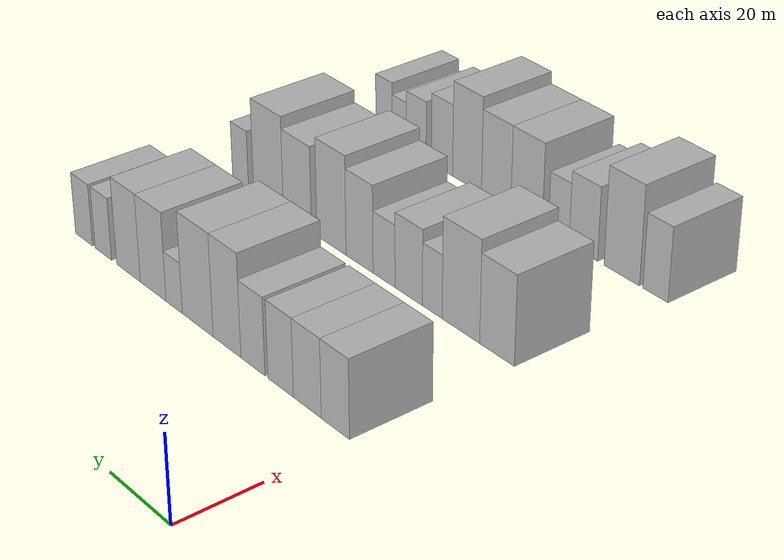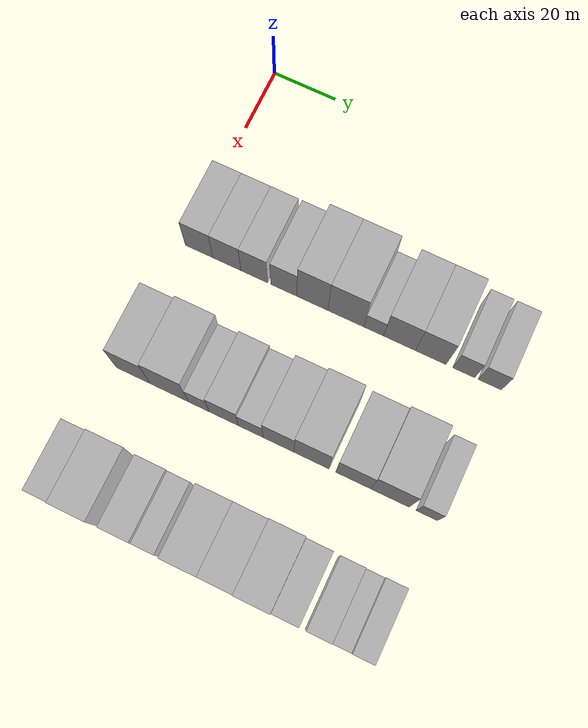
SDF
<sdf version="1.6">
 <world name="default">
  <model name="building_42">
   <static>1</static>
   <pose>50.0000 5.1504 0 0.000000 0.000000 0.000000</pose>
   <link name="link">
    <pose>0 0 9.00 0 0 0</pose>
    <collision name="collision"><geometry><box><size>20.0000 8.7349 18.0000</size></box></geometry></collision>
    <visual name="visual">
     <cast_shadows>0</cast_shadows>
     <geometry><box><size>20.0000 8.7349 18.0000</size></box></geometry>
     <material>
      <script>
       <uri>model://HANNAS_wall/materials/scripts</uri>
       <uri>model://HANNAS_wall/materials/textures</uri>
       <name>vrc/HANNAS_wall</name>
      </script>
     </material>
    </visual>
   </link>
  </model>
  <model name="building_43">
   <static>1</static>
   <pose>50.0000 13.9626 0 0.000000 0.000000 0.000000</pose>
   <link name="link">
    <pose>0 0 9.00 0 0 0</pose>
    <collision name="collision"><geometry><box><size>20.0000 8.8895 18.0000</size></box></geometry></collision>
    <visual name="visual">
     <cast_shadows>0</cast_shadows>
     <geometry><box><size>20.0000 8.8895 18.0000</size></box></geometry>
     <material>
      <script>
       <uri>model://HANNAS_wall/materials/scripts</uri>
       <uri>model://HANNAS_wall/materials/textures</uri>
       <name>vrc/HANNAS_wall</name>
      </script>
     </material>
    </visual>
   </link>
  </model>
  <model name="building_44">
   <static>1</static>
   <pose>50.0000 22.5887 0 0.000000 0.000000 0.000000</pose>
   <link name="link">
    <pose>0 0 9.00 0 0 0</pose>
    <collision name="collision"><geometry><box><size>20.0000 8.3627 18.0000</size></box></geometry></collision>
    <visual name="visual">
     <cast_shadows>0</cast_shadows>
     <geometry><box><size>20.0000 8.3627 18.0000</size></box></geometry>
     <material>
      <script>
       <uri>model://HANNAS_wall/materials/scripts</uri>
       <uri>model://HANNAS_wall/materials/textures</uri>
       <name>vrc/HANNAS_wall</name>
      </script>
     </material>
    </visual>
   </link>
  </model>
  <model name="building_45">
   <static>1</static>
   <pose>50.0000 31.8233 0 0.000000 0.000000 0.000000</pose>
   <link name="link">
    <pose>0 0 9.00 0 0 0</pose>
    <collision name="collision"><geometry><box><size>20.0000 8.1066 18.0000</size></box></geometry></collision>
    <visual name="visual">
     <cast_shadows>0</cast_shadows>
     <geometry><box><size>20.0000 8.1066 18.0000</size></box></geometry>
     <material>
      <script>
       <uri>model://HANNAS_wall/materials/scripts</uri>
       <uri>model://HANNAS_wall/materials/textures</uri>
       <name>vrc/HANNAS_wall</name>
      </script>
     </material>
    </visual>
   </link>
  </model>
  <model name="building_46">
   <static>1</static>
   <pose>50.0000 40.6943 0 0.000000 0.000000 0.000000</pose>
   <link name="link">
    <pose>0 0 12.00 0 0 0</pose>
    <collision name="collision"><geometry><box><size>20.0000 9.6353 24.0000</size></box></geometry></collision>
    <visual name="visual">
     <cast_shadows>0</cast_shadows>
     <geometry><box><size>20.0000 9.6353 24.0000</size></box></geometry>
     <material>
      <script>
       <uri>model://HANNAS_wall/materials/scripts</uri>
       <uri>model://HANNAS_wall/materials/textures</uri>
       <name>vrc/HANNAS_wall</name>
      </script>
     </material>
    </visual>
   </link>
  </model>
  <model name="building_47">
   <static>1</static>
   <pose>50.0000 51.0428 0 0.000000 0.000000 0.000000</pose>
   <link name="link">
    <pose>0 0 12.00 0 0 0</pose>
    <collision name="collision"><geometry><box><size>20.0000 11.0618 24.0000</size></box></geometry></collision>
    <visual name="visual">
     <cast_shadows>0</cast_shadows>
     <geometry><box><size>20.0000 11.0618 24.0000</size></box></geometry>
     <material>
      <script>
       <uri>model://HANNAS_wall/materials/scripts</uri>
       <uri>model://HANNAS_wall/materials/textures</uri>
       <name>vrc/HANNAS_wall</name>
      </script>
     </material>
    </visual>
   </link>
  </model>
  <model name="building_48">
   <static>1</static>
   <pose>50.0000 59.5618 0 0.000000 0.000000 0.000000</pose>
   <link name="link">
    <pose>0 0 6.00 0 0 0</pose>
    <collision name="collision"><geometry><box><size>20.0000 5.9762 12.0000</size></box></geometry></collision>
    <visual name="visual">
     <cast_shadows>0</cast_shadows>
     <geometry><box><size>20.0000 5.9762 12.0000</size></box></geometry>
     <material>
      <script>
       <uri>model://HANNAS_wall/materials/scripts</uri>
       <uri>model://HANNAS_wall/materials/textures</uri>
       <name>vrc/HANNAS_wall</name>
      </script>
     </material>
    </visual>
   </link>
  </model>
  <model name="building_49">
   <static>1</static>
   <pose>50.0000 67.4101 0 0.000000 0.000000 0.000000</pose>
   <link name="link">
    <pose>0 0 10.50 0 0 0</pose>
    <collision name="collision"><geometry><box><size>20.0000 9.7205 21.0000</size></box></geometry></collision>
    <visual name="visual">
     <cast_shadows>0</cast_shadows>
     <geometry><box><size>20.0000 9.7205 21.0000</size></box></geometry>
     <material>
      <script>
       <uri>model://HANNAS_wall/materials/scripts</uri>
       <uri>model://HANNAS_wall/materials/textures</uri>
       <name>vrc/HANNAS_wall</name>
      </script>
     </material>
    </visual>
   </link>
  </model>
  <model name="building_50">
   <static>1</static>
   <pose>50.0000 76.8824 0 0.000000 0.000000 0.000000</pose>
   <link name="link">
    <pose>0 0 10.50 0 0 0</pose>
    <collision name="collision"><geometry><box><size>20.0000 9.2241 21.0000</size></box></geometry></collision>
    <visual name="visual">
     <cast_shadows>0</cast_shadows>
     <geometry><box><size>20.0000 9.2241 21.0000</size></box></geometry>
     <material>
      <script>
       <uri>model://HANNAS_wall/materials/scripts</uri>
       <uri>model://HANNAS_wall/materials/textures</uri>
       <name>vrc/HANNAS_wall</name>
      </script>
     </material>
    </visual>
   </link>
  </model>
  <model name="building_51">
   <static>1</static>
   <pose>50.0000 86.7952 0 0.000000 0.000000 0.000000</pose>
   <link name="link">
    <pose>0 0 7.50 0 0 0</pose>
    <collision name="collision"><geometry><box><size>20.0000 6.6013 15.0000</size></box></geometry></collision>
    <visual name="visual">
     <cast_shadows>0</cast_shadows>
     <geometry><box><size>20.0000 6.6013 15.0000</size></box></geometry>
     <material>
      <script>
       <uri>model://HANNAS_wall/materials/scripts</uri>
       <uri>model://HANNAS_wall/materials/textures</uri>
       <name>vrc/HANNAS_wall</name>
      </script>
     </material>
    </visual>
   </link>
  </model>
  <model name="building_52">
   <static>1</static>
   <pose>50.0000 94.5593 0 0.000000 0.000000 0.000000</pose>
   <link name="link">
    <pose>0 0 7.50 0 0 0</pose>
    <collision name="collision"><geometry><box><size>20.0000 6.9269 15.0000</size></box></geometry></collision>
    <visual name="visual">
     <cast_shadows>0</cast_shadows>
     <geometry><box><size>20.0000 6.9269 15.0000</size></box></geometry>
     <material>
      <script>
       <uri>model://HANNAS_wall/materials/scripts</uri>
       <uri>model://HANNAS_wall/materials/textures</uri>
       <name>vrc/HANNAS_wall</name>
      </script>
     </material>
    </visual>
   </link>
  </model>
  <model name="building_129">
   <static>1</static>
   <pose>90.0000 5.2081 0 0.000000 0.000000 0.000000</pose>
   <link name="link">
    <pose>0 0 10.50 0 0 0</pose>
    <collision name="collision"><geometry><box><size>20.0000 10.4973 21.0000</size></box></geometry></collision>
    <visual name="visual">
     <cast_shadows>0</cast_shadows>
     <geometry><box><size>20.0000 10.4973 21.0000</size></box></geometry>
     <material>
      <script>
       <uri>model://HANNAS_wall/materials/scripts</uri>
       <uri>model://HANNAS_wall/materials/textures</uri>
       <name>vrc/HANNAS_wall</name>
      </script>
     </material>
    </visual>
   </link>
  </model>
  <model name="building_130">
   <static>1</static>
   <pose>90.0000 16.3154 0 0.000000 0.000000 0.000000</pose>
   <link name="link">
    <pose>0 0 12.00 0 0 0</pose>
    <collision name="collision"><geometry><box><size>20.0000 11.7172 24.0000</size></box></geometry></collision>
    <visual name="visual">
     <cast_shadows>0</cast_shadows>
     <geometry><box><size>20.0000 11.7172 24.0000</size></box></geometry>
     <material>
      <script>
       <uri>model://HANNAS_wall/materials/scripts</uri>
       <uri>model://HANNAS_wall/materials/textures</uri>
       <name>vrc/HANNAS_wall</name>
      </script>
     </material>
    </visual>
   </link>
  </model>
  <model name="building_131">
   <static>1</static>
   <pose>90.0000 25.3400 0 0.000000 0.000000 0.000000</pose>
   <link name="link">
    <pose>0 0 7.50 0 0 0</pose>
    <collision name="collision"><geometry><box><size>20.0000 6.3320 15.0000</size></box></geometry></collision>
    <visual name="visual">
     <cast_shadows>0</cast_shadows>
     <geometry><box><size>20.0000 6.3320 15.0000</size></box></geometry>
     <material>
      <script>
       <uri>model://HANNAS_wall/materials/scripts</uri>
       <uri>model://HANNAS_wall/materials/textures</uri>
       <name>vrc/HANNAS_wall</name>
      </script>
     </material>
    </visual>
   </link>
  </model>
  <model name="building_132">
   <static>1</static>
   <pose>90.0000 32.9797 0 0.000000 0.000000 0.000000</pose>
   <link name="link">
    <pose>0 0 9.00 0 0 0</pose>
    <collision name="collision"><geometry><box><size>20.0000 8.9473 18.0000</size></box></geometry></collision>
    <visual name="visual">
     <cast_shadows>0</cast_shadows>
     <geometry><box><size>20.0000 8.9473 18.0000</size></box></geometry>
     <material>
      <script>
       <uri>model://HANNAS_wall/materials/scripts</uri>
       <uri>model://HANNAS_wall/materials/textures</uri>
       <name>vrc/HANNAS_wall</name>
      </script>
     </material>
    </visual>
   </link>
  </model>
  <model name="building_133">
   <static>1</static>
   <pose>90.0000 41.1672 0 0.000000 0.000000 0.000000</pose>
   <link name="link">
    <pose>0 0 7.50 0 0 0</pose>
    <collision name="collision"><geometry><box><size>20.0000 7.4278 15.0000</size></box></geometry></collision>
    <visual name="visual">
     <cast_shadows>0</cast_shadows>
     <geometry><box><size>20.0000 7.4278 15.0000</size></box></geometry>
     <material>
      <script>
       <uri>model://HANNAS_wall/materials/scripts</uri>
       <uri>model://HANNAS_wall/materials/textures</uri>
       <name>vrc/HANNAS_wall</name>
      </script>
     </material>
    </visual>
   </link>
  </model>
  <model name="building_134">
   <static>1</static>
   <pose>90.0000 49.5160 0 0.000000 0.000000 0.000000</pose>
   <link name="link">
    <pose>0 0 10.50 0 0 0</pose>
    <collision name="collision"><geometry><box><size>20.0000 9.2696 21.0000</size></box></geometry></collision>
    <visual name="visual">
     <cast_shadows>0</cast_shadows>
     <geometry><box><size>20.0000 9.2696 21.0000</size></box></geometry>
     <material>
      <script>
       <uri>model://HANNAS_wall/materials/scripts</uri>
       <uri>model://HANNAS_wall/materials/textures</uri>
       <name>vrc/HANNAS_wall</name>
      </script>
     </material>
    </visual>
   </link>
  </model>
  <model name="building_135">
   <static>1</static>
   <pose>90.0000 59.3234 0 0.000000 0.000000 0.000000</pose>
   <link name="link">
    <pose>0 0 12.00 0 0 0</pose>
    <collision name="collision"><geometry><box><size>20.0000 10.3452 24.0000</size></box></geometry></collision>
    <visual name="visual">
     <cast_shadows>0</cast_shadows>
     <geometry><box><size>20.0000 10.3452 24.0000</size></box></geometry>
     <material>
      <script>
       <uri>model://HANNAS_wall/materials/scripts</uri>
       <uri>model://HANNAS_wall/materials/textures</uri>
       <name>vrc/HANNAS_wall</name>
      </script>
     </material>
    </visual>
   </link>
  </model>
  <model name="building_136">
   <static>1</static>
   <pose>90.0000 71.6429 0 0.000000 0.000000 0.000000</pose>
   <link name="link">
    <pose>0 0 10.50 0 0 0</pose>
    <collision name="collision"><geometry><box><size>20.0000 10.2939 21.0000</size></box></geometry></collision>
    <visual name="visual">
     <cast_shadows>0</cast_shadows>
     <geometry><box><size>20.0000 10.2939 21.0000</size></box></geometry>
     <material>
      <script>
       <uri>model://HANNAS_wall/materials/scripts</uri>
       <uri>model://HANNAS_wall/materials/textures</uri>
       <name>vrc/HANNAS_wall</name>
      </script>
     </material>
    </visual>
   </link>
  </model>
  <model name="building_137">
   <static>1</static>
   <pose>90.0000 82.4135 0 0.000000 0.000000 0.000000</pose>
   <link name="link">
    <pose>0 0 12.00 0 0 0</pose>
    <collision name="collision"><geometry><box><size>20.0000 11.2472 24.0000</size></box></geometry></collision>
    <visual name="visual">
     <cast_shadows>0</cast_shadows>
     <geometry><box><size>20.0000 11.2472 24.0000</size></box></geometry>
     <material>
      <script>
       <uri>model://HANNAS_wall/materials/scripts</uri>
       <uri>model://HANNAS_wall/materials/textures</uri>
       <name>vrc/HANNAS_wall</name>
      </script>
     </material>
    </visual>
   </link>
  </model>
  <model name="building_138">
   <static>1</static>
   <pose>90.0000 93.1206 0 0.000000 0.000000 0.000000</pose>
   <link name="link">
    <pose>0 0 7.50 0 0 0</pose>
    <collision name="collision"><geometry><box><size>20.0000 6.1670 15.0000</size></box></geometry></collision>
    <visual name="visual">
     <cast_shadows>0</cast_shadows>
     <geometry><box><size>20.0000 6.1670 15.0000</size></box></geometry>
     <material>
      <script>
       <uri>model://HANNAS_wall/materials/scripts</uri>
       <uri>model://HANNAS_wall/materials/textures</uri>
       <name>vrc/HANNAS_wall</name>
      </script>
     </material>
    </visual>
   </link>
  </model>
  <model name="building_216">
   <static>1</static>
   <pose>130.0000 1.5892 0 0.000000 0.000000 0.000000</pose>
   <link name="link">
    <pose>0 0 9.00 0 0 0</pose>
    <collision name="collision"><geometry><box><size>20.0000 7.4057 18.0000</size></box></geometry></collision>
    <visual name="visual">
     <cast_shadows>0</cast_shadows>
     <geometry><box><size>20.0000 7.4057 18.0000</size></box></geometry>
     <material>
      <script>
       <uri>model://HANNAS_wall/materials/scripts</uri>
       <uri>model://HANNAS_wall/materials/textures</uri>
       <name>vrc/HANNAS_wall</name>
      </script>
     </material>
    </visual>
   </link>
  </model>
  <model name="building_217">
   <static>1</static>
   <pose>130.0000 11.6293 0 0.000000 0.000000 0.000000</pose>
   <link name="link">
    <pose>0 0 12.00 0 0 0</pose>
    <collision name="collision"><geometry><box><size>20.0000 10.6746 24.0000</size></box></geometry></collision>
    <visual name="visual">
     <cast_shadows>0</cast_shadows>
     <geometry><box><size>20.0000 10.6746 24.0000</size></box></geometry>
     <material>
      <script>
       <uri>model://HANNAS_wall/materials/scripts</uri>
       <uri>model://HANNAS_wall/materials/textures</uri>
       <name>vrc/HANNAS_wall</name>
      </script>
     </material>
    </visual>
   </link>
  </model>
  <model name="building_218">
   <static>1</static>
   <pose>130.0000 23.4132 0 0.000000 0.000000 0.000000</pose>
   <link name="link">
    <pose>0 0 9.00 0 0 0</pose>
    <collision name="collision"><geometry><box><size>20.0000 8.8931 18.0000</size></box></geometry></collision>
    <visual name="visual">
     <cast_shadows>0</cast_shadows>
     <geometry><box><size>20.0000 8.8931 18.0000</size></box></geometry>
     <material>
      <script>
       <uri>model://HANNAS_wall/materials/scripts</uri>
       <uri>model://HANNAS_wall/materials/textures</uri>
       <name>vrc/HANNAS_wall</name>
      </script>
     </material>
    </visual>
   </link>
  </model>
  <model name="building_219">
   <static>1</static>
   <pose>130.0000 31.1548 0 0.000000 0.000000 0.000000</pose>
   <link name="link">
    <pose>0 0 7.50 0 0 0</pose>
    <collision name="collision"><geometry><box><size>20.0000 6.5902 15.0000</size></box></geometry></collision>
    <visual name="visual">
     <cast_shadows>0</cast_shadows>
     <geometry><box><size>20.0000 6.5902 15.0000</size></box></geometry>
     <material>
      <script>
       <uri>model://HANNAS_wall/materials/scripts</uri>
       <uri>model://HANNAS_wall/materials/textures</uri>
       <name>vrc/HANNAS_wall</name>
      </script>
     </material>
    </visual>
   </link>
  </model>
  <model name="building_220">
   <static>1</static>
   <pose>130.0000 41.6377 0 0.000000 0.000000 0.000000</pose>
   <link name="link">
    <pose>0 0 10.50 0 0 0</pose>
    <collision name="collision"><geometry><box><size>20.0000 10.3755 21.0000</size></box></geometry></collision>
    <visual name="visual">
     <cast_shadows>0</cast_shadows>
     <geometry><box><size>20.0000 10.3755 21.0000</size></box></geometry>
     <material>
      <script>
       <uri>model://HANNAS_wall/materials/scripts</uri>
       <uri>model://HANNAS_wall/materials/textures</uri>
       <name>vrc/HANNAS_wall</name>
      </script>
     </material>
    </visual>
   </link>
  </model>
  <model name="building_221">
   <static>1</static>
   <pose>130.0000 51.7915 0 0.000000 0.000000 0.000000</pose>
   <link name="link">
    <pose>0 0 10.50 0 0 0</pose>
    <collision name="collision"><geometry><box><size>20.0000 9.9322 21.0000</size></box></geometry></collision>
    <visual name="visual">
     <cast_shadows>0</cast_shadows>
     <geometry><box><size>20.0000 9.9322 21.0000</size></box></geometry>
     <material>
      <script>
       <uri>model://HANNAS_wall/materials/scripts</uri>
       <uri>model://HANNAS_wall/materials/textures</uri>
       <name>vrc/HANNAS_wall</name>
      </script>
     </material>
    </visual>
   </link>
  </model>
  <model name="building_222">
   <static>1</static>
   <pose>130.0000 61.7917 0 0.000000 0.000000 0.000000</pose>
   <link name="link">
    <pose>0 0 12.00 0 0 0</pose>
    <collision name="collision"><geometry><box><size>20.0000 10.0682 24.0000</size></box></geometry></collision>
    <visual name="visual">
     <cast_shadows>0</cast_shadows>
     <geometry><box><size>20.0000 10.0682 24.0000</size></box></geometry>
     <material>
      <script>
       <uri>model://HANNAS_wall/materials/scripts</uri>
       <uri>model://HANNAS_wall/materials/textures</uri>
       <name>vrc/HANNAS_wall</name>
      </script>
     </material>
    </visual>
   </link>
  </model>
  <model name="building_223">
   <static>1</static>
   <pose>130.0000 70.6098 0 0.000000 0.000000 0.000000</pose>
   <link name="link">
    <pose>0 0 9.00 0 0 0</pose>
    <collision name="collision"><geometry><box><size>20.0000 7.5679 18.0000</size></box></geometry></collision>
    <visual name="visual">
     <cast_shadows>0</cast_shadows>
     <geometry><box><size>20.0000 7.5679 18.0000</size></box></geometry>
     <material>
      <script>
       <uri>model://HANNAS_wall/materials/scripts</uri>
       <uri>model://HANNAS_wall/materials/textures</uri>
       <name>vrc/HANNAS_wall</name>
      </script>
     </material>
    </visual>
   </link>
  </model>
  <model name="building_224">
   <static>1</static>
   <pose>130.0000 79.9294 0 0.000000 0.000000 0.000000</pose>
   <link name="link">
    <pose>0 0 7.50 0 0 0</pose>
    <collision name="collision"><geometry><box><size>20.0000 7.0712 15.0000</size></box></geometry></collision>
    <visual name="visual">
     <cast_shadows>0</cast_shadows>
     <geometry><box><size>20.0000 7.0712 15.0000</size></box></geometry>
     <material>
      <script>
       <uri>model://HANNAS_wall/materials/scripts</uri>
       <uri>model://HANNAS_wall/materials/textures</uri>
       <name>vrc/HANNAS_wall</name>
      </script>
     </material>
    </visual>
   </link>
  </model>
  <model name="building_225">
   <static>1</static>
   <pose>130.0000 86.1307 0 0.000000 0.000000 0.000000</pose>
   <link name="link">
    <pose>0 0 6.00 0 0 0</pose>
    <collision name="collision"><geometry><box><size>20.0000 5.3316 12.0000</size></box></geometry></collision>
    <visual name="visual">
     <cast_shadows>0</cast_shadows>
     <geometry><box><size>20.0000 5.3316 12.0000</size></box></geometry>
     <material>
      <script>
       <uri>model://HANNAS_wall/materials/scripts</uri>
       <uri>model://HANNAS_wall/materials/textures</uri>
       <name>vrc/HANNAS_wall</name>
      </script>
     </material>
    </visual>
   </link>
  </model>
  <model name="building_226">
   <static>1</static>
   <pose>130.0000 91.8672 0 0.000000 0.000000 0.000000</pose>
   <link name="link">
    <pose>0 0 7.50 0 0 0</pose>
    <collision name="collision"><geometry><box><size>20.0000 6.1414 15.0000</size></box></geometry></collision>
    <visual name="visual">
     <cast_shadows>0</cast_shadows>
     <geometry><box><size>20.0000 6.1414 15.0000</size></box></geometry>
     <material>
      <script>
       <uri>model://HANNAS_wall/materials/scripts</uri>
       <uri>model://HANNAS_wall/materials/textures</uri>
       <name>vrc/HANNAS_wall</name>
      </script>
     </material>
    </visual>
   </link>
  </model>
 </world>
</sdf>
